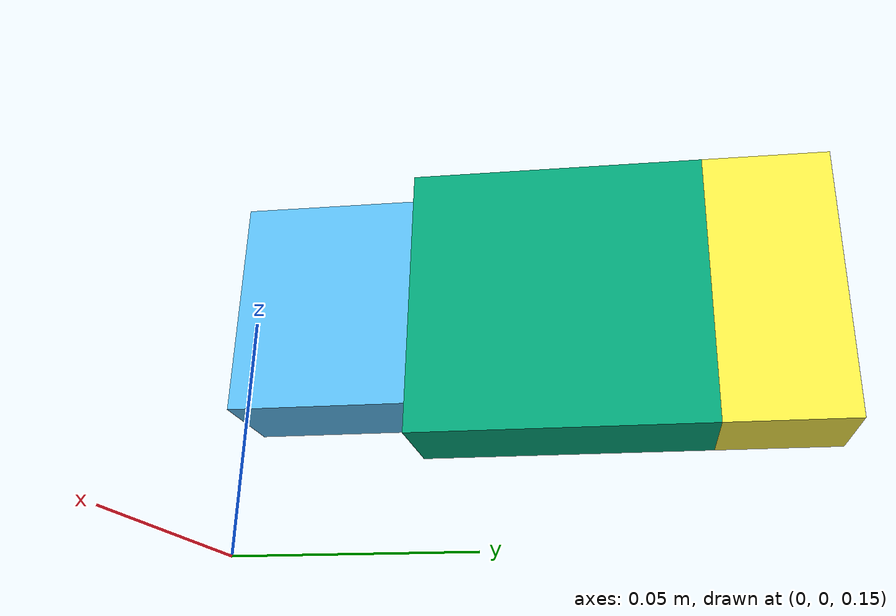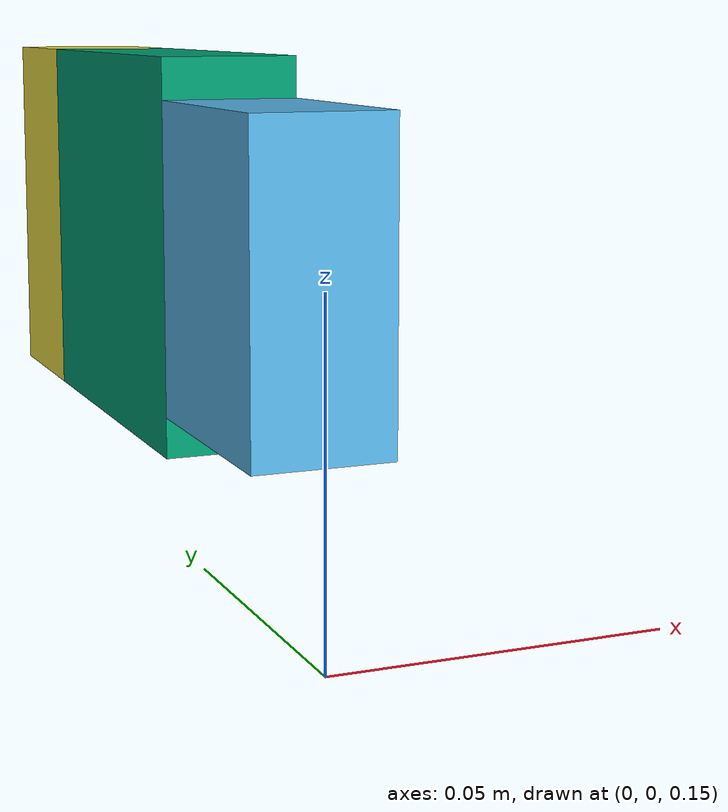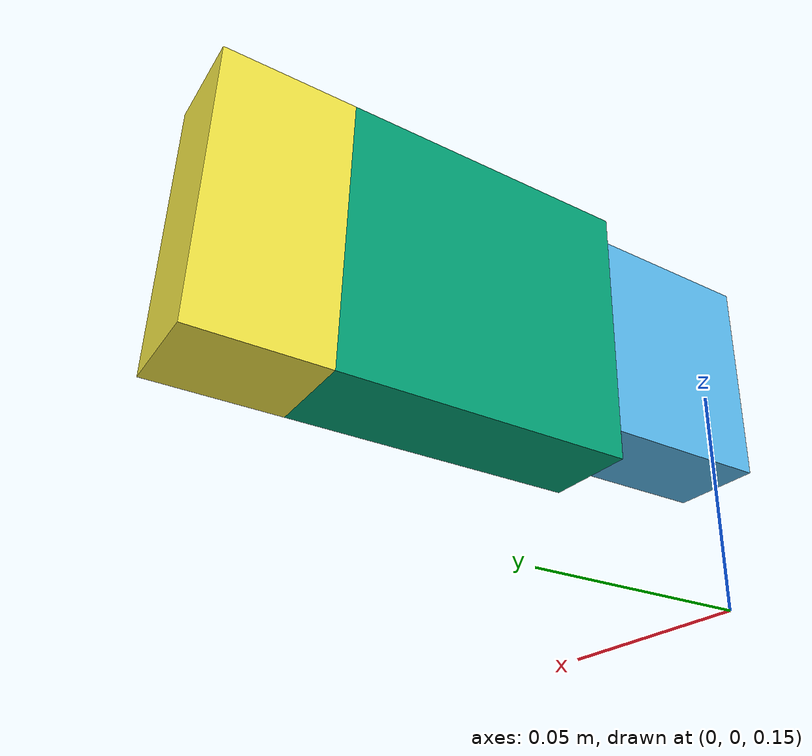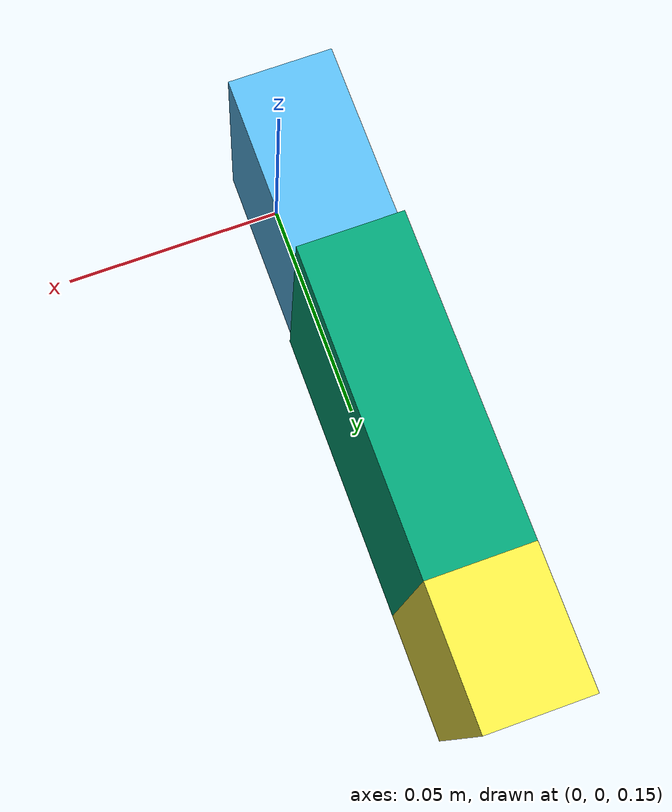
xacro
<?xml version="1.0" ?>

<robot name="plotter"
    xmlns:xacro="http://www.ros.org/wiki/xacro">

    <!-- BGN - Include -->
    <xacro:include filename="$(find plotter_description)/urdf/robot_parameters.xacro" />
    <xacro:include filename="$(find plotter_description)/urdf/links_joints.xacro" />
    <!-- END - Include -->

    <!-- BGN - Robot description -->

    <link name="world" />

    <joint name="world__link_01" type="fixed">
        <parent link="world"/>
        <child link="${link_01_name}"/>
    </joint>

    <xacro:m_link_box name="${link_01_name}" origin_rpy="0 0 0"
        origin_xyz="0 ${0.036/2 } 0.2"
        size = "0.02 0.036 0.045"
        mass = "0.01"
        ixx = "0.4" ixy = "0" ixz = "0"
        iyy = "0.4"  iyz = "0"
        izz = "0.4" />

    <xacro:m_joint name="${link_01_name}__${link_02_name}" type="revolute"
        axis_xyz = "0 0 1"
        origin_rpy ="0 0 0" origin_xyz = "0 0.036 0.2"
        parent = "${link_01_name}"  child = "${link_02_name}"
        limit_e = "3.0"
        limit_l = "-1.57"
        limit_u = "1.57"
        limit_v = "0.5" />

    <xacro:m_link_box name="${link_02_name}" origin_rpy="0 0 0"
        origin_xyz="0 ${0.061/2} 0"
        size = "0.02 0.061 0.057"
        mass = "0.01"
        ixx = "0.4" ixy = "0" ixz = "0"
        iyy = "0.4"  iyz = "0"
        izz = "0.4" />

    <xacro:m_joint name="${link_02_name}__${link_03_name}" type="revolute"
        axis_xyz = "0 0 1"
        origin_rpy ="0 0 0" origin_xyz = "0 0.061 0"
        parent = "${link_02_name}"  child = "${link_03_name}"
        limit_e = "3.0"
        limit_l = "-1.57"
        limit_u = "1.57"
        limit_v = "0.5" />

    <xacro:m_link_box name="${link_03_name}" origin_rpy="0 0 0"
        origin_xyz="0 ${0.026/2} 0"
        size = "0.02 0.026 0.057"
        mass = "0.01"
        ixx = "0.4" ixy = "0" ixz = "0"
        iyy = "0.4"  iyz = "0"
        izz = "0.4" />

        <gazebo>
            <plugin name="gazebo_ros_control" filename="libgazebo_ros_control.so">
                <robotNamespace>/plotter</robotNamespace>
		<robotSimType>gazebo_ros_control/DefaultRobotHWSim</robotSimType>
            </plugin>
        </gazebo>

</robot>

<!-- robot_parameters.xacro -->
<robot xmlns:xacro="http://www.ros.org/wiki/xacro">
  <xacro:property name="link_00_name" value="link_00" />
  <xacro:property name="link_01_name" value="link_01" />
  <xacro:property name="link_02_name" value="link_02" />
  <xacro:property name="link_03_name" value="link_03" />
</robot>

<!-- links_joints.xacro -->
<robot xmlns:xacro="http://www.ros.org/wiki/xacro">

  <xacro:macro name="m_joint" params="name type axis_xyz origin_rpy origin_xyz parent child limit_e limit_l limit_u limit_v">
    <joint name="${name}" type="${type}">
      <axis xyz="${axis_xyz}" />
      <limit effort="${limit_e}" lower="${limit_l}" upper="${limit_u}" velocity="${limit_v}" />
      <origin rpy="${origin_rpy}" xyz="${origin_xyz}" />
      <parent link="${parent}" />
      <child link="${child}" />
    </joint>
    <transmission name="trans_${name}">
      <type>transmission_interface/SimpleTransmission</type>
      <joint name="${name}">
        <hardwareInterface>hardware_interface/PositionJointInterface</hardwareInterface>
      </joint>
      <actuator name="motor_${name}">
        <hardwareInterface>hardware_interface/PositionJointInterface</hardwareInterface>
        <mechanicalReduction>1</mechanicalReduction>
      </actuator>
    </transmission>
  </xacro:macro>

  <xacro:macro name="m_joint_fixed" params="name type origin_rpy origin_xyz parent child">
    <joint name="${name}" type="${type}">
      <origin rpy="${origin_rpy}" xyz="${origin_xyz}" />
      <parent link="${parent}" />
      <child link="${child}" />
    </joint>
    <transmission name="trans_${name}">
      <type>transmission_interface/SimpleTransmission</type>
      <joint name="${name}">
        <hardwareInterface>hardware_interface/PositionJointInterface</hardwareInterface>
      </joint>
      <actuator name="motor_${name}">
        <hardwareInterface>hardware_interface/PositionJointInterface</hardwareInterface>
        <mechanicalReduction>1</mechanicalReduction>
      </actuator>
    </transmission>
  </xacro:macro>

  <xacro:macro name="m_link_cylinder" params="name origin_xyz origin_rpy radius length mass ixx ixy ixz iyy iyz izz">
    <link name="${name}">
      <inertial>
        <mass value="${mass}" />
        <origin rpy="${origin_rpy}" xyz="${origin_xyz}" />
        <inertia ixx="${ixx}" ixy="${ixy}" ixz="${ixz}" iyy="${iyy}" iyz="${iyz}" izz="${izz}" />
      </inertial>
      <collision>
        <origin rpy="${origin_rpy}" xyz="${origin_xyz}" />
        <geometry>
          <cylinder radius="${radius}" length="${length}" />
        </geometry>
      </collision>
      <visual>
        <origin rpy="${origin_rpy}" xyz="${origin_xyz}" />
        <geometry>
          <cylinder radius="${radius}" length="${length}" />
        </geometry>
      </visual>
    </link>
  </xacro:macro>

  <xacro:macro name="m_link_box" params="name origin_xyz origin_rpy size mass ixx ixy ixz iyy iyz izz">
    <link name="${name}">
      <inertial>
        <mass value="${mass}" />
        <origin rpy="${origin_rpy}" xyz="${origin_xyz}" />
        <inertia ixx="${ixx}" ixy="${ixy}" ixz="${ixz}" iyy="${iyy}" iyz="${iyz}" izz="${izz}" />
      </inertial>
      <collision>
        <origin rpy="${origin_rpy}" xyz="${origin_xyz}" />
        <geometry>
          <box size="${size}" />
        </geometry>
      </collision>
      <visual>
        <origin rpy="${origin_rpy}" xyz="${origin_xyz}" />
        <geometry>
          <box size="${size}" />
        </geometry>
      </visual>
    </link>
  </xacro:macro>

  <xacro:macro name="m_link_mesh" params="name origin_xyz origin_rpy meshfile meshscale mass ixx ixy ixz iyy iyz izz">
    <link name="${name}">
      <inertial>
        <mass value="${mass}" />
        <origin rpy="${origin_rpy}" xyz="${origin_xyz}" />
        <inertia ixx="${ixx}" ixy="${ixy}" ixz="${ixz}" iyy="${iyy}" iyz="${iyz}" izz="${izz}" />
      </inertial>
      <collision>
        <origin rpy="${origin_rpy}" xyz="${origin_xyz}" />
        <geometry>
          <mesh filename="${meshfile}" scale="${meshscale}"/>
        </geometry>
      </collision>
      <visual>
        <origin rpy="${origin_rpy}" xyz="${origin_xyz}" />
        <geometry>
          <mesh filename="${meshfile}" scale="${meshscale}"/>
        </geometry>
        <material name="light_black"/>
      </visual>
    </link>
  </xacro:macro>

</robot>
